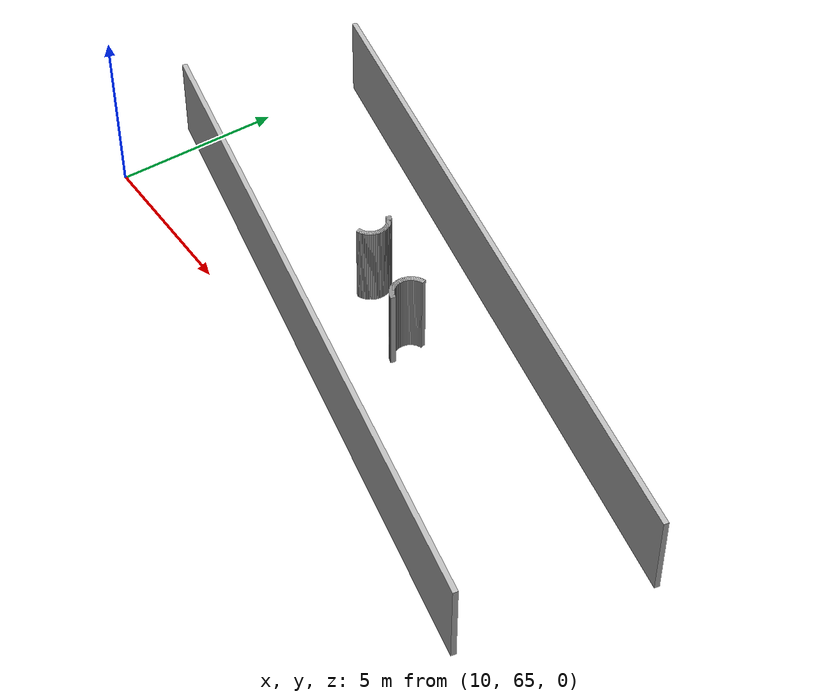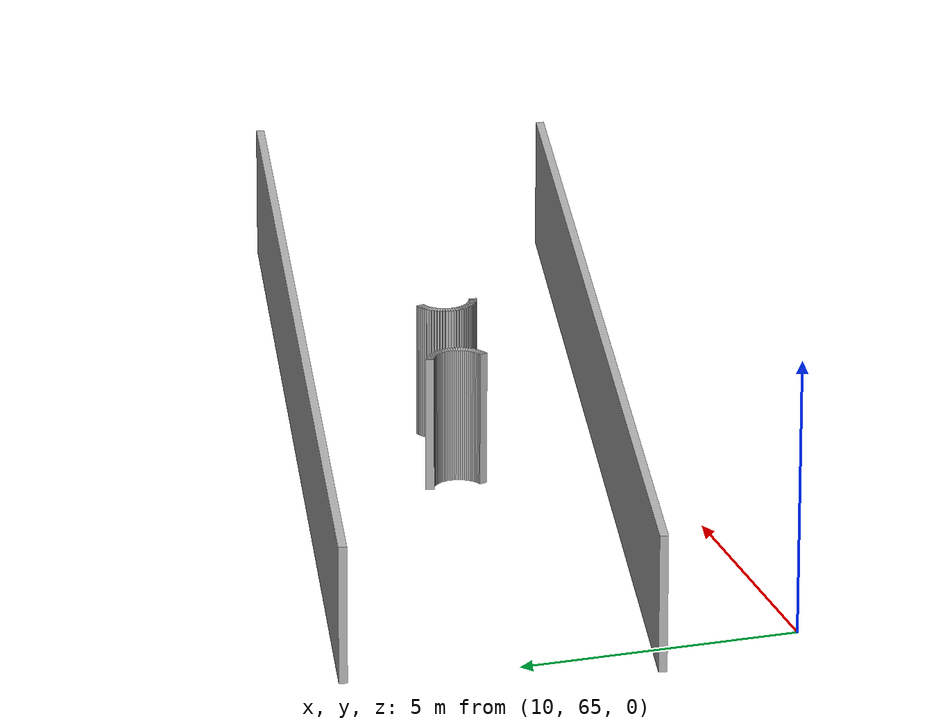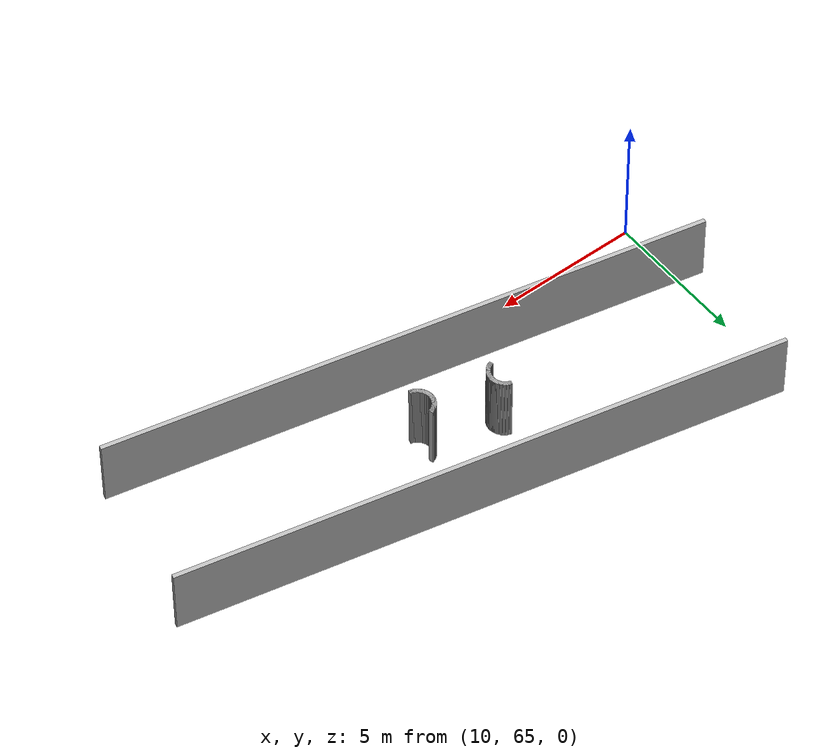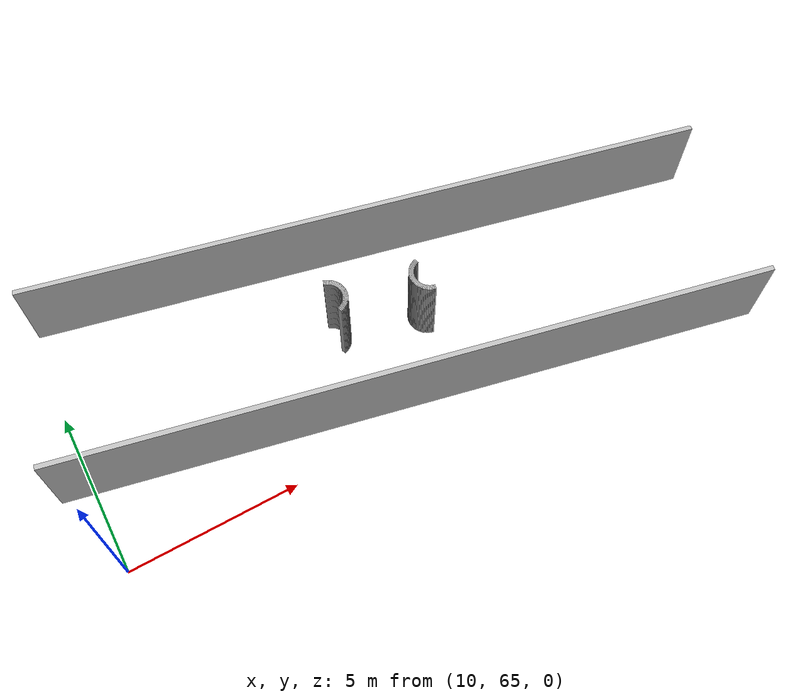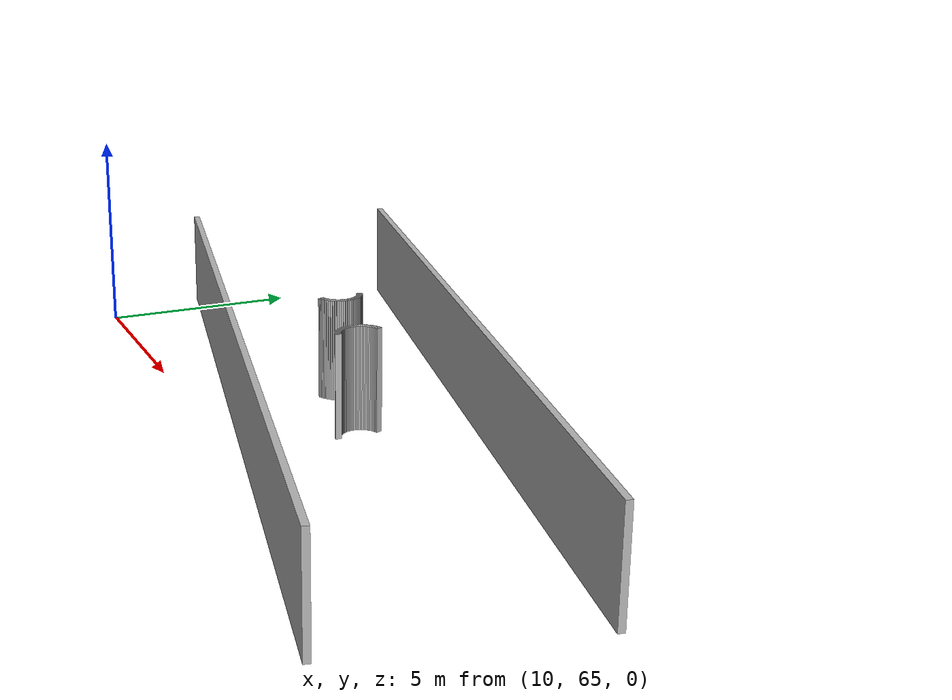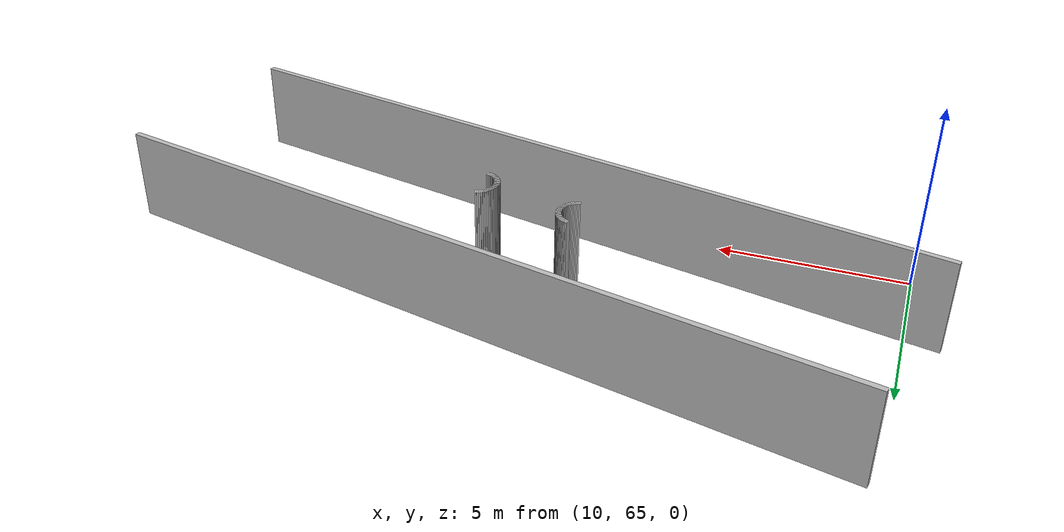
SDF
<sdf version="1.6">
 <model name="sps_1002">
  <static>1</static>
  <allow_auto_disable>0</allow_auto_disable>
  <link name="Wall784">
   <collision name="collision"><geometry><box><size>0.0453637 0.15 2.5</size></box></geometry></collision>
   <visual name="visual">
    <geometry><box><size>0.0453637 0.15 2.5</size></box></geometry>
    <transparency>0.0</transparency>
   </visual>
   <pose>18.2367 69.0123 1.25 0 0 -0.653727</pose>
  </link>
  <link name="Wall785">
   <collision name="collision"><geometry><box><size>0.0452735 0.15 2.5</size></box></geometry></collision>
   <visual name="visual">
    <geometry><box><size>0.0452735 0.15 2.5</size></box></geometry>
    <transparency>0.0</transparency>
   </visual>
   <pose>18.2714 68.9832 1.25 0 0 -0.741533</pose>
  </link>
  <link name="Wall786">
   <collision name="collision"><geometry><box><size>0.0454539 0.15 2.5</size></box></geometry></collision>
   <visual name="visual">
    <geometry><box><size>0.0454539 0.15 2.5</size></box></geometry>
    <transparency>0.0</transparency>
   </visual>
   <pose>18.3033 68.9511 1.25 0 0 -0.832891</pose>
  </link>
  <link name="Wall787">
   <collision name="collision"><geometry><box><size>0.0454008 0.15 2.5</size></box></geometry></collision>
   <visual name="visual">
    <geometry><box><size>0.0454008 0.15 2.5</size></box></geometry>
    <transparency>0.0</transparency>
   </visual>
   <pose>18.3325 68.9163 1.25 0 0 -0.916002</pose>
  </link>
  <link name="Wall788">
   <collision name="collision"><geometry><box><size>0.0452577 0.15 2.5</size></box></geometry></collision>
   <visual name="visual">
    <geometry><box><size>0.0452577 0.15 2.5</size></box></geometry>
    <transparency>0.0</transparency>
   </visual>
   <pose>18.3585 68.8792 1.25 0 0 -1.00262</pose>
  </link>
  <link name="Wall789">
   <collision name="collision"><geometry><box><size>0.0454007 0.15 2.5</size></box></geometry></collision>
   <visual name="visual">
    <geometry><box><size>0.0454007 0.15 2.5</size></box></geometry>
    <transparency>0.0</transparency>
   </visual>
   <pose>18.3812 68.84 1.25 0 0 -1.08851</pose>
  </link>
  <link name="Wall790">
   <collision name="collision"><geometry><box><size>0.0454525 0.15 2.5</size></box></geometry></collision>
   <visual name="visual">
    <geometry><box><size>0.0454525 0.15 2.5</size></box></geometry>
    <transparency>0.0</transparency>
   </visual>
   <pose>18.4004 68.7989 1.25 0 0 -1.17807</pose>
  </link>
  <link name="Wall791">
   <collision name="collision"><geometry><box><size>0.0452874 0.15 2.5</size></box></geometry></collision>
   <visual name="visual">
    <geometry><box><size>0.0452874 0.15 2.5</size></box></geometry>
    <transparency>0.0</transparency>
   </visual>
   <pose>18.4159 68.7563 1.25 0 0 -1.26695</pose>
  </link>
  <link name="Wall792">
   <collision name="collision"><geometry><box><size>0.0452689 0.15 2.5</size></box></geometry></collision>
   <visual name="visual">
    <geometry><box><size>0.0452689 0.15 2.5</size></box></geometry>
    <transparency>0.0</transparency>
   </visual>
   <pose>18.4275 68.7126 1.25 0 0 -1.35198</pose>
  </link>
  <link name="Wall793">
   <collision name="collision"><geometry><box><size>0.0453551 0.15 2.5</size></box></geometry></collision>
   <visual name="visual">
    <geometry><box><size>0.0453551 0.15 2.5</size></box></geometry>
    <transparency>0.0</transparency>
   </visual>
   <pose>18.4354 68.668 1.25 0 0 -1.4426</pose>
  </link>
  <link name="Wall794">
   <collision name="collision"><geometry><box><size>0.0454548 0.15 2.5</size></box></geometry></collision>
   <visual name="visual">
    <geometry><box><size>0.0454548 0.15 2.5</size></box></geometry>
    <transparency>0.0</transparency>
   </visual>
   <pose>18.4393 68.6228 1.25 0 0 -1.52647</pose>
  </link>
  <link name="Wall795">
   <collision name="collision"><geometry><box><size>0.0452719 0.15 2.5</size></box></geometry></collision>
   <visual name="visual">
    <geometry><box><size>0.0452719 0.15 2.5</size></box></geometry>
    <transparency>0.0</transparency>
   </visual>
   <pose>18.4393 68.5775 1.25 0 0 -1.6153</pose>
  </link>
  <link name="Wall796">
   <collision name="collision"><geometry><box><size>0.0453551 0.15 2.5</size></box></geometry></collision>
   <visual name="visual">
    <geometry><box><size>0.0453551 0.15 2.5</size></box></geometry>
    <transparency>0.0</transparency>
   </visual>
   <pose>18.4354 68.5324 1.25 0 0 -1.69899</pose>
  </link>
  <link name="Wall797">
   <collision name="collision"><geometry><box><size>0.0455072 0.15 2.5</size></box></geometry></collision>
   <visual name="visual">
    <geometry><box><size>0.0455072 0.15 2.5</size></box></geometry>
    <transparency>0.0</transparency>
   </visual>
   <pose>18.4275 68.4877 1.25 0 0 -1.78845</pose>
  </link>
  <link name="Wall798">
   <collision name="collision"><geometry><box><size>0.0453029 0.15 2.5</size></box></geometry></collision>
   <visual name="visual">
    <geometry><box><size>0.0453029 0.15 2.5</size></box></geometry>
    <transparency>0.0</transparency>
   </visual>
   <pose>18.4157 68.4439 1.25 0 0 -1.88019</pose>
  </link>
  <link name="Wall799">
   <collision name="collision"><geometry><box><size>0.0455089 0.15 2.5</size></box></geometry></collision>
   <visual name="visual">
    <geometry><box><size>0.0455089 0.15 2.5</size></box></geometry>
    <transparency>0.0</transparency>
   </visual>
   <pose>18.4001 68.4013 1.25 0 0 -1.96301</pose>
  </link>
  <link name="Wall800">
   <collision name="collision"><geometry><box><size>0.0453183 0.15 2.5</size></box></geometry></collision>
   <visual name="visual">
    <geometry><box><size>0.0453183 0.15 2.5</size></box></geometry>
    <transparency>0.0</transparency>
   </visual>
   <pose>18.3809 68.3602 1.25 0 0 -2.05251</pose>
  </link>
  <link name="Wall801">
   <collision name="collision"><geometry><box><size>0.045342 0.15 2.5</size></box></geometry></collision>
   <visual name="visual">
    <geometry><box><size>0.045342 0.15 2.5</size></box></geometry>
    <transparency>0.0</transparency>
   </visual>
   <pose>18.3582 68.321 1.25 0 0 -2.13938</pose>
  </link>
  <link name="Wall802">
   <collision name="collision"><geometry><box><size>0.0453637 0.15 2.5</size></box></geometry></collision>
   <visual name="visual">
    <geometry><box><size>0.0453637 0.15 2.5</size></box></geometry>
    <transparency>0.0</transparency>
   </visual>
   <pose>18.3322 68.2839 1.25 0 0 -2.22452</pose>
  </link>
  <link name="Wall803">
   <collision name="collision"><geometry><box><size>0.0452735 0.15 2.5</size></box></geometry></collision>
   <visual name="visual">
    <geometry><box><size>0.0452735 0.15 2.5</size></box></geometry>
    <transparency>0.0</transparency>
   </visual>
   <pose>18.3032 68.2492 1.25 0 0 -2.31233</pose>
  </link>
  <link name="Wall804">
   <collision name="collision"><geometry><box><size>0.0454388 0.15 2.5</size></box></geometry></collision>
   <visual name="visual">
    <geometry><box><size>0.0454388 0.15 2.5</size></box></geometry>
    <transparency>0.0</transparency>
   </visual>
   <pose>18.2712 68.2171 1.25 0 0 -2.3961</pose>
  </link>
  <link name="Wall805">
   <collision name="collision"><geometry><box><size>0.0452526 0.15 2.5</size></box></geometry></collision>
   <visual name="visual">
    <geometry><box><size>0.0452526 0.15 2.5</size></box></geometry>
    <transparency>0.0</transparency>
   </visual>
   <pose>18.2365 68.188 1.25 0 0 -2.49108</pose>
  </link>
  <link name="Wall806">
   <collision name="collision"><geometry><box><size>0.0453092 0.15 2.5</size></box></geometry></collision>
   <visual name="visual">
    <geometry><box><size>0.0453092 0.15 2.5</size></box></geometry>
    <transparency>0.0</transparency>
   </visual>
   <pose>18.1994 68.1621 1.25 0 0 -2.57414</pose>
  </link>
  <link name="Wall807">
   <collision name="collision"><geometry><box><size>0.0455348 0.15 2.5</size></box></geometry></collision>
   <visual name="visual">
    <geometry><box><size>0.0455348 0.15 2.5</size></box></geometry>
    <transparency>0.0</transparency>
   </visual>
   <pose>18.1601 68.1394 1.25 0 0 -2.66236</pose>
  </link>
  <link name="Wall808">
   <collision name="collision"><geometry><box><size>0.0453069 0.15 2.5</size></box></geometry></collision>
   <visual name="visual">
    <geometry><box><size>0.0453069 0.15 2.5</size></box></geometry>
    <transparency>0.0</transparency>
   </visual>
   <pose>18.1189 68.1202 1.25 0 0 -2.74608</pose>
  </link>
  <link name="Wall809">
   <collision name="collision"><geometry><box><size>0.0452874 0.15 2.5</size></box></geometry></collision>
   <visual name="visual">
    <geometry><box><size>0.0452874 0.15 2.5</size></box></geometry>
    <transparency>0.0</transparency>
   </visual>
   <pose>18.0764 68.1047 1.25 0 0 -2.83774</pose>
  </link>
  <link name="Wall852">
   <collision name="collision"><geometry><box><size>0.0452475 0.15 2.5</size></box></geometry></collision>
   <visual name="visual">
    <geometry><box><size>0.0452475 0.15 2.5</size></box></geometry>
    <transparency>0.0</transparency>
   </visual>
   <pose>18.0767 69.0957 1.25 0 0 -0.30554</pose>
  </link>
  <link name="Wall853">
   <collision name="collision"><geometry><box><size>0.0455089 0.15 2.5</size></box></geometry></collision>
   <visual name="visual">
    <geometry><box><size>0.0455089 0.15 2.5</size></box></geometry>
    <transparency>0.0</transparency>
   </visual>
   <pose>18.1193 69.0802 1.25 0 0 -0.392212</pose>
  </link>
  <link name="Wall854">
   <collision name="collision"><geometry><box><size>0.0453183 0.15 2.5</size></box></geometry></collision>
   <visual name="visual">
    <geometry><box><size>0.0453183 0.15 2.5</size></box></geometry>
    <transparency>0.0</transparency>
   </visual>
   <pose>18.1604 69.061 1.25 0 0 -0.481718</pose>
  </link>
  <link name="Wall855">
   <collision name="collision"><geometry><box><size>0.045342 0.15 2.5</size></box></geometry></collision>
   <visual name="visual">
    <geometry><box><size>0.045342 0.15 2.5</size></box></geometry>
    <transparency>0.0</transparency>
   </visual>
   <pose>18.1995 69.0383 1.25 0 0 -0.568588</pose>
  </link>
  <link name="Wall857">
   <collision name="collision"><geometry><box><size>20.9005 0.15 2.5</size></box></geometry></collision>
   <visual name="visual">
    <geometry><box><size>20.9005 0.15 2.5</size></box></geometry>
    <transparency>0.0</transparency>
   </visual>
   <pose>20.4746 70.8395 1.25 0 0 -0.21426</pose>
  </link>
  <link name="Wall859">
   <collision name="collision"><geometry><box><size>20.9005 0.15 2.5</size></box></geometry></collision>
   <visual name="visual">
    <geometry><box><size>20.9005 0.15 2.5</size></box></geometry>
    <transparency>0.0</transparency>
   </visual>
   <pose>19.3189 65.5287 1.25 0 -0 2.92733</pose>
  </link>
  <link name="Wall2568">
   <collision name="collision"><geometry><box><size>0.0454345 0.15 2.5</size></box></geometry></collision>
   <visual name="visual">
    <geometry><box><size>0.0454345 0.15 2.5</size></box></geometry>
    <transparency>0.0</transparency>
   </visual>
   <pose>20.7479 67.4534 1.25 0 -0 2.92496</pose>
  </link>
  <link name="Wall2569">
   <collision name="collision"><geometry><box><size>0.0453057 0.15 2.5</size></box></geometry></collision>
   <visual name="visual">
    <geometry><box><size>0.0453057 0.15 2.5</size></box></geometry>
    <transparency>0.0</transparency>
   </visual>
   <pose>20.7041 67.4651 1.25 0 -0 2.83646</pose>
  </link>
  <link name="Wall2570">
   <collision name="collision"><geometry><box><size>0.0454525 0.15 2.5</size></box></geometry></collision>
   <visual name="visual">
    <geometry><box><size>0.0454525 0.15 2.5</size></box></geometry>
    <transparency>0.0</transparency>
   </visual>
   <pose>20.6615 67.4806 1.25 0 -0 2.74887</pose>
  </link>
  <link name="Wall2571">
   <collision name="collision"><geometry><box><size>0.0453724 0.15 2.5</size></box></geometry></collision>
   <visual name="visual">
    <geometry><box><size>0.0453724 0.15 2.5</size></box></geometry>
    <transparency>0.0</transparency>
   </visual>
   <pose>20.6204 67.4998 1.25 0 -0 2.6605</pose>
  </link>
  <link name="Wall2572">
   <collision name="collision"><geometry><box><size>0.045342 0.15 2.5</size></box></geometry></collision>
   <visual name="visual">
    <geometry><box><size>0.045342 0.15 2.5</size></box></geometry>
    <transparency>0.0</transparency>
   </visual>
   <pose>20.5811 67.5225 1.25 0 -0 2.57301</pose>
  </link>
  <link name="Wall2573">
   <collision name="collision"><geometry><box><size>0.0453153 0.15 2.5</size></box></geometry></collision>
   <visual name="visual">
    <geometry><box><size>0.0453153 0.15 2.5</size></box></geometry>
    <transparency>0.0</transparency>
   </visual>
   <pose>20.5441 67.5485 1.25 0 -0 2.48705</pose>
  </link>
  <link name="Wall2574">
   <collision name="collision"><geometry><box><size>0.0454836 0.15 2.5</size></box></geometry></collision>
   <visual name="visual">
    <geometry><box><size>0.0454836 0.15 2.5</size></box></geometry>
    <transparency>0.0</transparency>
   </visual>
   <pose>20.5094 67.5777 1.25 0 -0 2.39701</pose>
  </link>
  <link name="Wall2575">
   <collision name="collision"><geometry><box><size>0.0452735 0.15 2.5</size></box></geometry></collision>
   <visual name="visual">
    <geometry><box><size>0.0452735 0.15 2.5</size></box></geometry>
    <transparency>0.0</transparency>
   </visual>
   <pose>20.4773 67.6098 1.25 0 -0 2.31233</pose>
  </link>
  <link name="Wall2576">
   <collision name="collision"><geometry><box><size>0.0453637 0.15 2.5</size></box></geometry></collision>
   <visual name="visual">
    <geometry><box><size>0.0453637 0.15 2.5</size></box></geometry>
    <transparency>0.0</transparency>
   </visual>
   <pose>20.4483 67.6445 1.25 0 -0 2.22452</pose>
  </link>
  <link name="Wall2577">
   <collision name="collision"><geometry><box><size>0.045342 0.15 2.5</size></box></geometry></collision>
   <visual name="visual">
    <geometry><box><size>0.045342 0.15 2.5</size></box></geometry>
    <transparency>0.0</transparency>
   </visual>
   <pose>20.4223 67.6816 1.25 0 -0 2.13938</pose>
  </link>
  <link name="Wall2578">
   <collision name="collision"><geometry><box><size>0.0453724 0.15 2.5</size></box></geometry></collision>
   <visual name="visual">
    <geometry><box><size>0.0453724 0.15 2.5</size></box></geometry>
    <transparency>0.0</transparency>
   </visual>
   <pose>20.3996 67.7208 1.25 0 -0 2.05189</pose>
  </link>
  <link name="Wall2579">
   <collision name="collision"><geometry><box><size>0.0454525 0.15 2.5</size></box></geometry></collision>
   <visual name="visual">
    <geometry><box><size>0.0454525 0.15 2.5</size></box></geometry>
    <transparency>0.0</transparency>
   </visual>
   <pose>20.3804 67.7619 1.25 0 -0 1.96352</pose>
  </link>
  <link name="Wall2580">
   <collision name="collision"><geometry><box><size>0.0452475 0.15 2.5</size></box></geometry></collision>
   <visual name="visual">
    <geometry><box><size>0.0452475 0.15 2.5</size></box></geometry>
    <transparency>0.0</transparency>
   </visual>
   <pose>20.3649 67.8045 1.25 0 -0 1.87634</pose>
  </link>
  <link name="Wall2581">
   <collision name="collision"><geometry><box><size>0.0455072 0.15 2.5</size></box></geometry></collision>
   <visual name="visual">
    <geometry><box><size>0.0455072 0.15 2.5</size></box></geometry>
    <transparency>0.0</transparency>
   </visual>
   <pose>20.3531 67.8483 1.25 0 -0 1.78845</pose>
  </link>
  <link name="Wall2582">
   <collision name="collision"><geometry><box><size>0.0453551 0.15 2.5</size></box></geometry></collision>
   <visual name="visual">
    <geometry><box><size>0.0453551 0.15 2.5</size></box></geometry>
    <transparency>0.0</transparency>
   </visual>
   <pose>20.3453 67.893 1.25 0 -0 1.69899</pose>
  </link>
  <link name="Wall2583">
   <collision name="collision"><geometry><box><size>0.0452692 0.15 2.5</size></box></geometry></collision>
   <visual name="visual">
    <geometry><box><size>0.0452692 0.15 2.5</size></box></geometry>
    <transparency>0.0</transparency>
   </visual>
   <pose>20.3415 67.9381 1.25 0 -0 1.61395</pose>
  </link>
  <link name="Wall2584">
   <collision name="collision"><geometry><box><size>0.0454521 0.15 2.5</size></box></geometry></collision>
   <visual name="visual">
    <geometry><box><size>0.0454521 0.15 2.5</size></box></geometry>
    <transparency>0.0</transparency>
   </visual>
   <pose>20.3415 67.9834 1.25 0 -0 1.52781</pose>
  </link>
  <link name="Wall2585">
   <collision name="collision"><geometry><box><size>0.0453551 0.15 2.5</size></box></geometry></collision>
   <visual name="visual">
    <geometry><box><size>0.0453551 0.15 2.5</size></box></geometry>
    <transparency>0.0</transparency>
   </visual>
   <pose>20.3453 68.0286 1.25 0 -0 1.4426</pose>
  </link>
  <link name="Wall2586">
   <collision name="collision"><geometry><box><size>0.045309 0.15 2.5</size></box></geometry></collision>
   <visual name="visual">
    <geometry><box><size>0.045309 0.15 2.5</size></box></geometry>
    <transparency>0.0</transparency>
   </visual>
   <pose>20.3532 68.0732 1.25 0 -0 1.34804</pose>
  </link>
  <link name="Wall2587">
   <collision name="collision"><geometry><box><size>0.0454804 0.15 2.5</size></box></geometry></collision>
   <visual name="visual">
    <geometry><box><size>0.0454804 0.15 2.5</size></box></geometry>
    <transparency>0.0</transparency>
   </visual>
   <pose>20.365 68.117 1.25 0 -0 1.26687</pose>
  </link>
  <link name="Wall2588">
   <collision name="collision"><geometry><box><size>0.0452834 0.15 2.5</size></box></geometry></collision>
   <visual name="visual">
    <geometry><box><size>0.0452834 0.15 2.5</size></box></geometry>
    <transparency>0.0</transparency>
   </visual>
   <pose>20.3805 68.1596 1.25 0 -0 1.17652</pose>
  </link>
  <link name="Wall2589">
   <collision name="collision"><geometry><box><size>0.0453724 0.15 2.5</size></box></geometry></collision>
   <visual name="visual">
    <geometry><box><size>0.0453724 0.15 2.5</size></box></geometry>
    <transparency>0.0</transparency>
   </visual>
   <pose>20.3997 68.2006 1.25 0 -0 1.0897</pose>
  </link>
  <link name="Wall2590">
   <collision name="collision"><geometry><box><size>0.0452906 0.15 2.5</size></box></geometry></collision>
   <visual name="visual">
    <geometry><box><size>0.0452906 0.15 2.5</size></box></geometry>
    <transparency>0.0</transparency>
   </visual>
   <pose>20.4224 68.2398 1.25 0 -0 1.00148</pose>
  </link>
  <link name="Wall2591">
   <collision name="collision"><geometry><box><size>0.0453637 0.15 2.5</size></box></geometry></collision>
   <visual name="visual">
    <geometry><box><size>0.0453637 0.15 2.5</size></box></geometry>
    <transparency>0.0</transparency>
   </visual>
   <pose>20.4484 68.2769 1.25 0 -0 0.91707</pose>
  </link>
  <link name="Wall2592">
   <collision name="collision"><geometry><box><size>0.0454949 0.15 2.5</size></box></geometry></collision>
   <visual name="visual">
    <geometry><box><size>0.0454949 0.15 2.5</size></box></geometry>
    <transparency>0.0</transparency>
   </visual>
   <pose>20.4776 68.3117 1.25 0 -0 0.831898</pose>
  </link>
  <link name="Wall2593">
   <collision name="collision"><geometry><box><size>0.0452735 0.15 2.5</size></box></geometry></collision>
   <visual name="visual">
    <geometry><box><size>0.0452735 0.15 2.5</size></box></geometry>
    <transparency>0.0</transparency>
   </visual>
   <pose>20.5096 68.3438 1.25 0 -0 0.741533</pose>
  </link>
  <link name="Wall2594">
   <collision name="collision"><geometry><box><size>0.0453637 0.15 2.5</size></box></geometry></collision>
   <visual name="visual">
    <geometry><box><size>0.0453637 0.15 2.5</size></box></geometry>
    <transparency>0.0</transparency>
   </visual>
   <pose>20.5443 68.3729 1.25 0 -0 0.653727</pose>
  </link>
  <link name="Wall2595">
   <collision name="collision"><geometry><box><size>0.045342 0.15 2.5</size></box></geometry></collision>
   <visual name="visual">
    <geometry><box><size>0.045342 0.15 2.5</size></box></geometry>
    <transparency>0.0</transparency>
   </visual>
   <pose>20.5814 68.3989 1.25 0 -0 0.568588</pose>
  </link>
  <link name="Wall2596">
   <collision name="collision"><geometry><box><size>0.0453965 0.15 2.5</size></box></geometry></collision>
   <visual name="visual">
    <geometry><box><size>0.0453965 0.15 2.5</size></box></geometry>
    <transparency>0.0</transparency>
   </visual>
   <pose>20.6207 68.4215 1.25 0 -0 0.476275</pose>
  </link>
  <link name="Wall2597">
   <collision name="collision"><geometry><box><size>0.0452834 0.15 2.5</size></box></geometry></collision>
   <visual name="visual">
    <geometry><box><size>0.0452834 0.15 2.5</size></box></geometry>
    <transparency>0.0</transparency>
   </visual>
   <pose>20.6617 68.4406 1.25 0 -0 0.394273</pose>
  </link>
  <link name="Wall2598">
   <collision name="collision"><geometry><box><size>0.0454804 0.15 2.5</size></box></geometry></collision>
   <visual name="visual">
    <geometry><box><size>0.0454804 0.15 2.5</size></box></geometry>
    <transparency>0.0</transparency>
   </visual>
   <pose>20.7043 68.4561 1.25 0 -0 0.303926</pose>
  </link>
 </model>
</sdf>
